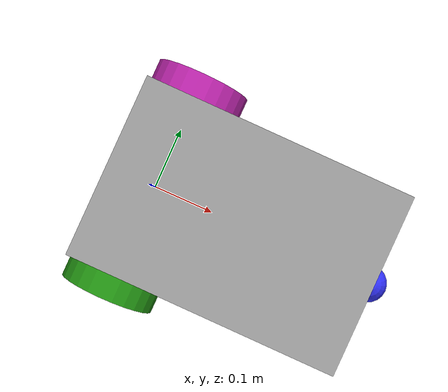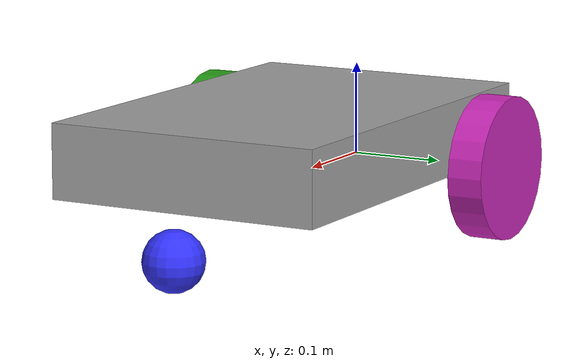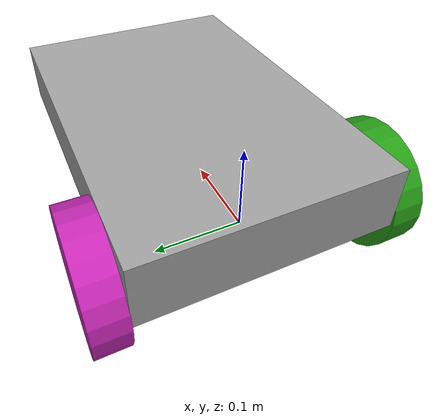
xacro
<?xml version="1.0"?>
<robot xmlns:xacro="http://www.ros.org/wiki/xacro" >

    <xacro:include filename="inertial_macros.xacro"/>

    <xacro:property name="chassis_length" value="0.448"/>
    <xacro:property name="chassis_width" value="0.3"/>
    <xacro:property name="chassis_height" value="0.07913"/>
    <xacro:property name="chassis_mass" value="6.0"/>
    <xacro:property name="wheel_radius" value="0.0775"/>
    <xacro:property name="wheel_thickness" value="0.03886"/>
    <xacro:property name="wheel_mass" value="0.5"/>
    <xacro:property name="wheel_offset_x" value="0.07388"/>
    <xacro:property name="wheel_offset_y" value="0.169"/>
    <xacro:property name="wheel_offset_z" value="0.0"/>
    <xacro:property name="caster_wheel_radius" value="0.032225"/>
    <xacro:property name="caster_wheel_mass" value="0.2"/>
    <xacro:property name="caster_wheel_offset_x" value="0.45862"/>
    <xacro:property name="caster_wheel_offset_z" value="${wheel_offset_z - wheel_radius + caster_wheel_radius}"/>

    <material name="white">
        <color rgba="1 1 1 1" />
    </material>

    <material name="orange">
        <color rgba="1 0.3 0.1 1"/>
    </material>

    <material name="blue">
        <color rgba="0.2 0.2 1 1"/>
    </material>

    <material name="black">
        <color rgba="0 0 0 1"/>
    </material>

    <material name="red">
        <color rgba="1 0 0 1"/>
    </material>

    <material name="grey">
        <color rgba="0.631 0.631 0.631 1"/>
    </material>

    <material name="purple">
        <color rgba="0.78 0.153 0.71 1"/>
    </material>

    <material name="green">
        <color rgba="0.149 0.612 0.082 1"/>
    </material>

    <!-- Base Link -->
    <link name="base_link">
    </link>

    <!-- Base Footprint -->
    <joint name="base_footprint_joint" type="fixed">
        <parent link="base_link"/>
        <child link="base_footprint"/>
        <origin xyz="0 0 0" rpy="0 0 0"/>
    </joint>

    <link name="base_footprint">
    </link>

    <!-- Chassis -->
    <joint name="chassis_joint" type="fixed">
        <parent link="base_link"/>
        <child link="chassis"/>
        <origin xyz="${-wheel_offset_x} 0 ${-wheel_offset_z}"/>
    </joint>

    <link name="chassis">
        <visual>
            <origin xyz="${chassis_length/2} 0 ${chassis_height/2}"/>
            <geometry>
                <box size="${chassis_length} ${chassis_width} ${chassis_height}"/>
            </geometry>
            <material name="grey"/>
        </visual>
        <collision>
            <origin xyz="${chassis_length/2} 0 ${chassis_height/2}"/>
            <geometry>
                <box size="${chassis_length} ${chassis_width} ${chassis_height}"/>
            </geometry>
        </collision>
        <xacro:inertial_box mass="0.5" x="${chassis_length}" y="${chassis_width}" z="${chassis_height}">
            <origin xyz="${chassis_length/2} 0 ${chassis_height/2}" rpy="0 0 0"/>
        </xacro:inertial_box>
    </link>

    <gazebo reference="chassis">
        <material>Gazebo/Grey</material>
    </gazebo>

    <!-- Left Wheel -->
    <joint name="left_wheel_joint" type="continuous">
        <parent link="base_link"/>
        <child link="left_wheel"/>
        <origin xyz="0 ${wheel_offset_y} 0" rpy="-${pi/2} 0 0" />
        <axis xyz="0 0 1"/>
    </joint>

    <link name="left_wheel">
        <visual>
            <geometry>
                <cylinder radius="${wheel_radius}" length="${wheel_thickness}"/>
            </geometry>
            <material name="purple"/>
        </visual>
        <collision>
            <geometry>
                <sphere radius="${wheel_radius}"/>
            </geometry>
        </collision>
        <xacro:inertial_cylinder mass="${wheel_mass}" length="${wheel_thickness}" radius="${wheel_radius}">
            <origin xyz="0 0 0" rpy="0 0 0"/>
        </xacro:inertial_cylinder>
    </link>

    <gazebo reference="left_wheel">
        <material>Gazebo/Purple</material>
    </gazebo>

    <!-- Right Wheel -->
    <joint name="right_wheel_joint" type="continuous">
        <parent link="base_link"/>
        <child link="right_wheel"/>
        <origin xyz="0 ${-wheel_offset_y} 0" rpy="${pi/2} 0 0" />
        <axis xyz="0 0 -1"/>
    </joint>

    <link name="right_wheel">
        <visual>
            <geometry>
                <cylinder radius="${wheel_radius}" length="${wheel_thickness}"/>
            </geometry>
            <material name="green"/>
        </visual>
        <collision>
            <geometry>
                <sphere radius="${wheel_radius}"/>
            </geometry>
        </collision>
        <xacro:inertial_cylinder mass="${wheel_mass}" length="${wheel_thickness}" radius="${wheel_radius}">
            <origin xyz="0 0 0" rpy="0 0 0"/>
        </xacro:inertial_cylinder>
    </link>

    <gazebo reference="right_wheel">
        <material>Gazebo/Green</material>
    </gazebo>

    <!-- Caster Wheel -->
    <joint name="caster_wheel_joint" type="fixed">
        <parent link="chassis"/>
        <child link="caster_wheel"/>
        <origin xyz="${caster_wheel_offset_x} 0 ${caster_wheel_offset_z}"/>
    </joint>

    <link name="caster_wheel">
        <visual>
            <geometry>
                <sphere radius="${caster_wheel_radius}"/>
            </geometry>
            <material name="blue"/>
        </visual>
        <collision>
            <geometry>
                <sphere radius="${caster_wheel_radius}"/>
            </geometry>
        </collision>
        <xacro:inertial_sphere mass="${caster_wheel_mass}" radius="${caster_wheel_radius}">
            <origin xyz="0 0 0" rpy="0 0 0"/>
        </xacro:inertial_sphere>
    </link>

    <gazebo reference="caster_wheel">
        <material>Gazebo/Blue</material>
        <mu1 value="0.001"/>
        <mu2 value="0.001"/>
    </gazebo>

</robot>

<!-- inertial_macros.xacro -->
<robot xmlns:xacro="http://www.ros.org/wiki/xacro" >

    <!-- Inertial Sphere Macros -->
    <xacro:macro name="inertial_sphere" params="mass radius *origin">
        <inertial>
            <xacro:insert_block name="origin"/>
            <mass value="${mass}" />
            <inertia ixx="${(2/5) * mass * (radius*radius)}" ixy="0.0" ixz="0.0"
                    iyy="${(2/5) * mass * (radius*radius)}" iyz="0.0"
                    izz="${(2/5) * mass * (radius*radius)}" />
        </inertial>
    </xacro:macro>

    <!-- Inertial Box Macros -->
    <xacro:macro name="inertial_box" params="mass x y z *origin">
        <inertial>
            <xacro:insert_block name="origin"/>
            <mass value="${mass}" />
            <inertia ixx="${(1/12) * mass * (y*y+z*z)}" ixy="0.0" ixz="0.0"
                    iyy="${(1/12) * mass * (x*x+z*z)}" iyz="0.0"
                    izz="${(1/12) * mass * (x*x+y*y)}" />
        </inertial>
    </xacro:macro>

    <!-- Inertial Cylinder Macros -->
    <xacro:macro name="inertial_cylinder" params="mass length radius *origin">
        <inertial>
            <xacro:insert_block name="origin"/>
            <mass value="${mass}" />
            <inertia ixx="${(1/12) * mass * (3*radius*radius + length*length)}" ixy="0.0" ixz="0.0"
                    iyy="${(1/12) * mass * (3*radius*radius + length*length)}" iyz="0.0"
                    izz="${(1/2) * mass * (radius*radius)}" />
        </inertial>
    </xacro:macro>

</robot>
